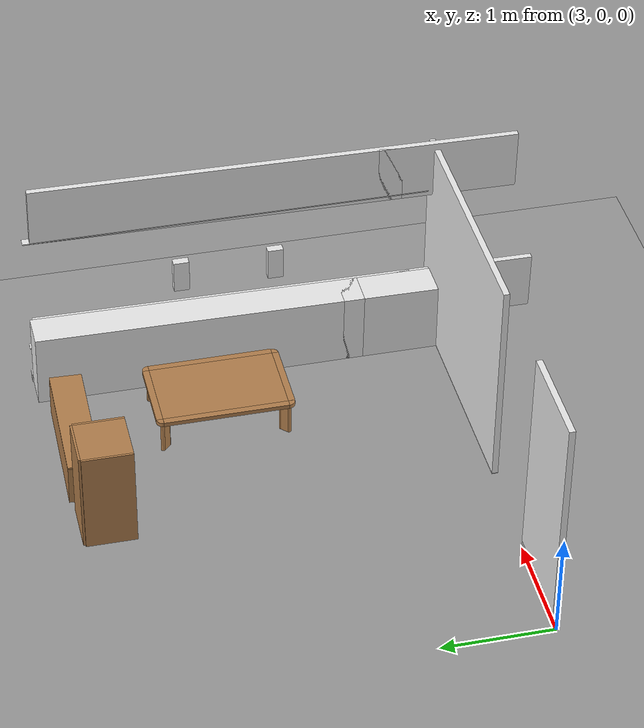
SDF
<sdf version="1.6">
 <world name="default">
  <model name="ground_plane">
   <static>1</static>
   <link name="link">
    <collision name="collision">
     <geometry><plane><normal>0 0 1</normal><size>100 100</size></plane></geometry>
     <surface><friction><ode><mu>100</mu><mu2>50</mu2></ode></friction></surface>
    </collision>
    <visual name="visual">
     <cast_shadows>0</cast_shadows>
     <geometry><plane><normal>0 0 1</normal><size>100 100</size></plane></geometry>
     <material>
      <script><uri>file://media/materials/scripts/gazebo.material</uri><name>Gazebo/Grey</name></script>
     </material>
    </visual>
   </link>
  </model>
  <model name="window">
   <link name="link">
    <pose>0 -1.45119 -0.459736 0 -0 0</pose>
    <inertial>
     <mass>74.704</mass>
     <inertia><ixx>0</ixx><ixy>0</ixy><ixz>0</ixz><iyy>0</iyy><iyz>0</iyz><izz>0</izz></inertia>
    </inertial>
    <velocity_decay><linear>0</linear><angular>0</angular></velocity_decay>
    <visual name="bottom_frame">
     <pose>0 0 0.05 0 -0 0</pose>
     <geometry><box><size>0.076062 3.6807 0.026221</size></box></geometry>
     <material>
      <script><uri>model://base_materials/color/scripts</uri><name>hsr_color/white</name></script>
      <ambient>1 1 1 1</ambient>
      <diffuse>0.5 0.5 0.5 1</diffuse>
      <specular>0 0 0 1</specular>
      <emissive>0 0 0 1</emissive>
     </material>
    </visual>
    <visual name="wall">
     <pose>0 0 0.4875 0 -0 0</pose>
     <geometry><box><size>0.076062 3.6807 0.209551</size></box></geometry>
     <material>
      <script>
       <uri>model://base_materials/wall/scripts</uri>
       <uri>model://base_materials/wall/textures</uri>
       <name>wall/white_noise</name>
      </script>
      <ambient>1 1 1 1</ambient>
      <diffuse>0.5 0.5 0.5 1</diffuse>
      <specular>0 0 0 1</specular>
      <emissive>0 0 0 1</emissive>
     </material>
    </visual>
    <visual name="right_frame">
     <pose>0 0.4325 1.48 0 -0 0</pose>
     <geometry><box><size>0.076062 0.143199 0.306613</size></box></geometry>
     <material>
      <script><uri>model://base_materials/color/scripts</uri><name>hsr_color/white</name></script>
      <ambient>1 1 1 1</ambient>
      <diffuse>0.5 0.5 0.5 1</diffuse>
      <specular>0 0 0 1</specular>
      <emissive>0 0 0 1</emissive>
     </material>
    </visual>
    <visual name="center_frame">
     <pose>0 0 0.8925 0 -0 0</pose>
     <geometry><box><size>0.076062 3.6807 0.006217</size></box></geometry>
     <material>
      <script><uri>model://base_materials/color/scripts</uri><name>hsr_color/white</name></script>
      <ambient>1 1 1 1</ambient>
      <diffuse>0.5 0.5 0.5 1</diffuse>
      <specular>0 0 0 1</specular>
      <emissive>0 0 0 1</emissive>
     </material>
    </visual>
    <visual name="left_frame">
     <pose>0 -0.4325 1.48 0 -0 0</pose>
     <geometry><box><size>0.076062 0.143199 0.306613</size></box></geometry>
     <material>
      <script><uri>model://base_materials/color/scripts</uri><name>hsr_color/white</name></script>
      <ambient>1 1 1 1</ambient>
      <diffuse>0.5 0.5 0.5 1</diffuse>
      <specular>0 0 0 1</specular>
      <emissive>0 0 0 1</emissive>
     </material>
    </visual>
    <visual name="top_frame">
     <pose>0 0 2.07 0 -0 0</pose>
     <geometry><box><size>0.076062 3.6807 0.008574</size></box></geometry>
     <material>
      <script><uri>model://base_materials/color/scripts</uri><name>hsr_color/white</name></script>
      <ambient>1 1 1 1</ambient>
      <diffuse>0.5 0.5 0.5 1</diffuse>
      <specular>0 0 0 1</specular>
      <emissive>0 0 0 1</emissive>
     </material>
    </visual>
    <collision name="collision_right_frame">
     <pose>0 0.4325 1.48 0 -0 0</pose>
     <geometry><box><size>0.076062 0.143199 0.306613</size></box></geometry>
     <surface>
      <friction>
       <ode><mu>1</mu><mu2>1</mu2><fdir1>0 0 0</fdir1><slip1>0</slip1><slip2>0</slip2></ode>
       <torsional>
        <coefficient>1</coefficient>
        <patch_radius>0</patch_radius>
        <surface_radius>0</surface_radius>
        <use_patch_radius>1</use_patch_radius>
        <ode><slip>0</slip></ode>
       </torsional>
      </friction>
      <bounce><restitution_coefficient>0</restitution_coefficient><threshold>1e+06</threshold></bounce>
      <contact>
       <collide_without_contact>0</collide_without_contact>
       <collide_without_contact_bitmask>1</collide_without_contact_bitmask>
       <collide_bitmask>1</collide_bitmask>
       <ode>
        <soft_cfm>0</soft_cfm>
        <soft_erp>0.2</soft_erp>
        <kp>1e+13</kp>
        <kd>1</kd>
        <max_vel>0.01</max_vel>
        <min_depth>0</min_depth>
       </ode>
       <bullet>
        <split_impulse>1</split_impulse>
        <split_impulse_penetration_threshold>-0.01</split_impulse_penetration_threshold>
        <soft_cfm>0</soft_cfm>
        <soft_erp>0.2</soft_erp>
        <kp>1e+13</kp>
        <kd>1</kd>
       </bullet>
      </contact>
     </surface>
    </collision>
    <collision name="collision_bottom_frame">
     <pose>0 0 0.05 0 -0 0</pose>
     <geometry><box><size>0.076062 3.6807 0.026221</size></box></geometry>
     <surface>
      <friction>
       <ode><mu>1</mu><mu2>1</mu2><fdir1>0 0 0</fdir1><slip1>0</slip1><slip2>0</slip2></ode>
       <torsional>
        <coefficient>1</coefficient>
        <patch_radius>0</patch_radius>
        <surface_radius>0</surface_radius>
        <use_patch_radius>1</use_patch_radius>
        <ode><slip>0</slip></ode>
       </torsional>
      </friction>
      <bounce><restitution_coefficient>0</restitution_coefficient><threshold>1e+06</threshold></bounce>
      <contact>
       <collide_without_contact>0</collide_without_contact>
       <collide_without_contact_bitmask>1</collide_without_contact_bitmask>
       <collide_bitmask>1</collide_bitmask>
       <ode>
        <soft_cfm>0</soft_cfm>
        <soft_erp>0.2</soft_erp>
        <kp>1e+13</kp>
        <kd>1</kd>
        <max_vel>0.01</max_vel>
        <min_depth>0</min_depth>
       </ode>
       <bullet>
        <split_impulse>1</split_impulse>
        <split_impulse_penetration_threshold>-0.01</split_impulse_penetration_threshold>
        <soft_cfm>0</soft_cfm>
        <soft_erp>0.2</soft_erp>
        <kp>1e+13</kp>
        <kd>1</kd>
       </bullet>
      </contact>
     </surface>
    </collision>
    <collision name="collision_wall">
     <pose>0 0 0.4875 0 -0 0</pose>
     <geometry><box><size>0.076062 3.6807 0.209551</size></box></geometry>
     <surface>
      <friction>
       <ode><mu>1</mu><mu2>1</mu2><fdir1>0 0 0</fdir1><slip1>0</slip1><slip2>0</slip2></ode>
       <torsional>
        <coefficient>1</coefficient>
        <patch_radius>0</patch_radius>
        <surface_radius>0</surface_radius>
        <use_patch_radius>1</use_patch_radius>
        <ode><slip>0</slip></ode>
       </torsional>
      </friction>
      <bounce><restitution_coefficient>0</restitution_coefficient><threshold>1e+06</threshold></bounce>
      <contact>
       <collide_without_contact>0</collide_without_contact>
       <collide_without_contact_bitmask>1</collide_without_contact_bitmask>
       <collide_bitmask>1</collide_bitmask>
       <ode>
        <soft_cfm>0</soft_cfm>
        <soft_erp>0.2</soft_erp>
        <kp>1e+13</kp>
        <kd>1</kd>
        <max_vel>0.01</max_vel>
        <min_depth>0</min_depth>
       </ode>
       <bullet>
        <split_impulse>1</split_impulse>
        <split_impulse_penetration_threshold>-0.01</split_impulse_penetration_threshold>
        <soft_cfm>0</soft_cfm>
        <soft_erp>0.2</soft_erp>
        <kp>1e+13</kp>
        <kd>1</kd>
       </bullet>
      </contact>
     </surface>
    </collision>
    <collision name="collision_center_frame">
     <pose>0 0 0.8925 0 -0 0</pose>
     <geometry><box><size>0.076062 3.6807 0.006217</size></box></geometry>
     <surface>
      <friction>
       <ode><mu>1</mu><mu2>1</mu2><fdir1>0 0 0</fdir1><slip1>0</slip1><slip2>0</slip2></ode>
       <torsional>
        <coefficient>1</coefficient>
        <patch_radius>0</patch_radius>
        <surface_radius>0</surface_radius>
        <use_patch_radius>1</use_patch_radius>
        <ode><slip>0</slip></ode>
       </torsional>
      </friction>
      <bounce><restitution_coefficient>0</restitution_coefficient><threshold>1e+06</threshold></bounce>
      <contact>
       <collide_without_contact>0</collide_without_contact>
       <collide_without_contact_bitmask>1</collide_without_contact_bitmask>
       <collide_bitmask>1</collide_bitmask>
       <ode>
        <soft_cfm>0</soft_cfm>
        <soft_erp>0.2</soft_erp>
        <kp>1e+13</kp>
        <kd>1</kd>
        <max_vel>0.01</max_vel>
        <min_depth>0</min_depth>
       </ode>
       <bullet>
        <split_impulse>1</split_impulse>
        <split_impulse_penetration_threshold>-0.01</split_impulse_penetration_threshold>
        <soft_cfm>0</soft_cfm>
        <soft_erp>0.2</soft_erp>
        <kp>1e+13</kp>
        <kd>1</kd>
       </bullet>
      </contact>
     </surface>
    </collision>
    <collision name="collision_left_frame">
     <pose>0 -0.4325 1.48 0 -0 0</pose>
     <geometry><box><size>0.076062 0.143199 0.306613</size></box></geometry>
     <surface>
      <friction>
       <ode><mu>1</mu><mu2>1</mu2><fdir1>0 0 0</fdir1><slip1>0</slip1><slip2>0</slip2></ode>
       <torsional>
        <coefficient>1</coefficient>
        <patch_radius>0</patch_radius>
        <surface_radius>0</surface_radius>
        <use_patch_radius>1</use_patch_radius>
        <ode><slip>0</slip></ode>
       </torsional>
      </friction>
      <bounce><restitution_coefficient>0</restitution_coefficient><threshold>1e+06</threshold></bounce>
      <contact>
       <collide_without_contact>0</collide_without_contact>
       <collide_without_contact_bitmask>1</collide_without_contact_bitmask>
       <collide_bitmask>1</collide_bitmask>
       <ode>
        <soft_cfm>0</soft_cfm>
        <soft_erp>0.2</soft_erp>
        <kp>1e+13</kp>
        <kd>1</kd>
        <max_vel>0.01</max_vel>
        <min_depth>0</min_depth>
       </ode>
       <bullet>
        <split_impulse>1</split_impulse>
        <split_impulse_penetration_threshold>-0.01</split_impulse_penetration_threshold>
        <soft_cfm>0</soft_cfm>
        <soft_erp>0.2</soft_erp>
        <kp>1e+13</kp>
        <kd>1</kd>
       </bullet>
      </contact>
     </surface>
    </collision>
    <collision name="collision_top_frame">
     <pose>0 0 2.07 0 -0 0</pose>
     <geometry><box><size>0.076062 3.6807 0.008574</size></box></geometry>
     <surface>
      <friction>
       <ode><mu>1</mu><mu2>1</mu2><fdir1>0 0 0</fdir1><slip1>0</slip1><slip2>0</slip2></ode>
       <torsional>
        <coefficient>1</coefficient>
        <patch_radius>0</patch_radius>
        <surface_radius>0</surface_radius>
        <use_patch_radius>1</use_patch_radius>
        <ode><slip>0</slip></ode>
       </torsional>
      </friction>
      <bounce><restitution_coefficient>0</restitution_coefficient><threshold>1e+06</threshold></bounce>
      <contact>
       <collide_without_contact>0</collide_without_contact>
       <collide_without_contact_bitmask>1</collide_without_contact_bitmask>
       <collide_bitmask>1</collide_bitmask>
       <ode>
        <soft_cfm>0</soft_cfm>
        <soft_erp>0.2</soft_erp>
        <kp>1e+13</kp>
        <kd>1</kd>
        <max_vel>0.01</max_vel>
        <min_depth>0</min_depth>
       </ode>
       <bullet>
        <split_impulse>1</split_impulse>
        <split_impulse_penetration_threshold>-0.01</split_impulse_penetration_threshold>
        <soft_cfm>0</soft_cfm>
        <soft_erp>0.2</soft_erp>
        <kp>1e+13</kp>
        <kd>1</kd>
       </bullet>
      </contact>
     </surface>
    </collision>
   </link>
   <static>1</static>
   <pose>7.07328 3.36168 0 0 -0 0</pose>
  </model>
  <model name="full_wall_55_900_2090_1_clone_0">
   <link name="link">
    <inertial>
     <mass>50</mass>
     <inertia><ixx>1</ixx><ixy>0</ixy><ixz>0</ixz><iyy>1</iyy><iyz>0</iyz><izz>1</izz></inertia>
    </inertial>
    <visual name="bottom_frame">
     <pose>0 0 0.05 0 -0 0</pose>
     <geometry><box><size>0.055 0.9 0.1</size></box></geometry>
     <material>
      <script><uri>model://base_materials/color/scripts</uri><name>hsr_color/white</name></script>
     </material>
    </visual>
    <collision name="collision_bottom_frame">
     <pose>0 0 0.05 0 -0 0</pose>
     <geometry><box><size>0.055 0.9 0.1</size></box></geometry>
    </collision>
    <visual name="wall">
     <pose>0 0 1.095 0 -0 0</pose>
     <geometry><box><size>0.055 0.9 1.99</size></box></geometry>
     <material>
      <script>
       <uri>model://base_materials/wall/scripts</uri>
       <uri>model://base_materials/wall/textures</uri>
       <name>wall/white_noise</name>
      </script>
     </material>
    </visual>
    <collision name="collision_wall">
     <pose>0 0 1.095 0 -0 0</pose>
     <geometry><box><size>0.055 0.9 1.99</size></box></geometry>
    </collision>
    <velocity_decay><linear>0</linear><angular>0</angular></velocity_decay>
   </link>
   <static>1</static>
   <pose>3.55507 -0.024236 -0.016667 0 -0 1.5708</pose>
  </model>
  <model name="full_wall_bedroom_dinning">
   <link name="link">
    <pose>-0 -0.606378 0 0 -0 0</pose>
    <inertial>
     <mass>128.04</mass>
     <inertia><ixx>0</ixx><ixy>0</ixy><ixz>0</ixz><iyy>0</iyy><iyz>0</iyz><izz>0</izz></inertia>
    </inertial>
    <velocity_decay><linear>0</linear><angular>0</angular></velocity_decay>
    <visual name="bottom_frame">
     <pose>0 0 0.05 0 -0 0</pose>
     <geometry><box><size>0.055 2.30472 0.1</size></box></geometry>
     <material>
      <script><uri>model://base_materials/color/scripts</uri><name>hsr_color/white</name></script>
      <ambient>1 1 1 1</ambient>
      <diffuse>0.5 0.5 0.5 1</diffuse>
      <specular>0 0 0 1</specular>
      <emissive>0 0 0 1</emissive>
     </material>
    </visual>
    <visual name="wall">
     <pose>0 0 1.095 0 -0 0</pose>
     <geometry><box><size>0.055 2.30472 1.99</size></box></geometry>
     <material>
      <script>
       <uri>model://base_materials/wall/scripts</uri>
       <uri>model://base_materials/wall/textures</uri>
       <name>wall/white_noise</name>
      </script>
      <ambient>1 1 1 1</ambient>
      <diffuse>0.5 0.5 0.5 1</diffuse>
      <specular>0 0 0 1</specular>
      <emissive>0 0 0 1</emissive>
     </material>
    </visual>
    <collision name="collision_bottom_frame">
     <pose>0 0 0.05 0 -0 0</pose>
     <geometry><box><size>0.055 2.30472 0.1</size></box></geometry>
     <surface>
      <friction>
       <ode><mu>1</mu><mu2>1</mu2><fdir1>0 0 0</fdir1><slip1>0</slip1><slip2>0</slip2></ode>
       <torsional>
        <coefficient>1</coefficient>
        <patch_radius>0</patch_radius>
        <surface_radius>0</surface_radius>
        <use_patch_radius>1</use_patch_radius>
        <ode><slip>0</slip></ode>
       </torsional>
      </friction>
      <bounce><restitution_coefficient>0</restitution_coefficient><threshold>1e+06</threshold></bounce>
      <contact>
       <collide_without_contact>0</collide_without_contact>
       <collide_without_contact_bitmask>1</collide_without_contact_bitmask>
       <collide_bitmask>1</collide_bitmask>
       <ode>
        <soft_cfm>0</soft_cfm>
        <soft_erp>0.2</soft_erp>
        <kp>1e+13</kp>
        <kd>1</kd>
        <max_vel>0.01</max_vel>
        <min_depth>0</min_depth>
       </ode>
       <bullet>
        <split_impulse>1</split_impulse>
        <split_impulse_penetration_threshold>-0.01</split_impulse_penetration_threshold>
        <soft_cfm>0</soft_cfm>
        <soft_erp>0.2</soft_erp>
        <kp>1e+13</kp>
        <kd>1</kd>
       </bullet>
      </contact>
     </surface>
    </collision>
    <collision name="collision_wall">
     <pose>0 0 1.095 0 -0 0</pose>
     <geometry><box><size>0.055 2.30472 1.99</size></box></geometry>
     <surface>
      <friction>
       <ode><mu>1</mu><mu2>1</mu2><fdir1>0 0 0</fdir1><slip1>0</slip1><slip2>0</slip2></ode>
       <torsional>
        <coefficient>1</coefficient>
        <patch_radius>0</patch_radius>
        <surface_radius>0</surface_radius>
        <use_patch_radius>1</use_patch_radius>
        <ode><slip>0</slip></ode>
       </torsional>
      </friction>
      <bounce><restitution_coefficient>0</restitution_coefficient><threshold>1e+06</threshold></bounce>
      <contact>
       <collide_without_contact>0</collide_without_contact>
       <collide_without_contact_bitmask>1</collide_without_contact_bitmask>
       <collide_bitmask>1</collide_bitmask>
       <ode>
        <soft_cfm>0</soft_cfm>
        <soft_erp>0.2</soft_erp>
        <kp>1e+13</kp>
        <kd>1</kd>
        <max_vel>0.01</max_vel>
        <min_depth>0</min_depth>
       </ode>
       <bullet>
        <split_impulse>1</split_impulse>
        <split_impulse_penetration_threshold>-0.01</split_impulse_penetration_threshold>
        <soft_cfm>0</soft_cfm>
        <soft_erp>0.2</soft_erp>
        <kp>1e+13</kp>
        <kd>1</kd>
       </bullet>
      </contact>
     </surface>
    </collision>
   </link>
   <static>1</static>
   <pose>5.45612 -0.013844 -0.043333 0 -0 1.58042</pose>
  </model>
  <model name="up_wall_0_clone_0">
   <link name="link">
    <pose>0 0.208482 0 0 -0 0</pose>
    <inertial>
     <mass>50</mass>
     <inertia><ixx>1</ixx><ixy>0</ixy><ixz>0</ixz><iyy>1</iyy><iyz>0</iyz><izz>1</izz></inertia>
    </inertial>
    <velocity_decay><linear>0</linear><angular>0</angular></velocity_decay>
    <visual name="bottom_frame">
     <pose>0 0 0.05 0 -0 0</pose>
     <geometry><box><size>0.055 0.551713 0.234857</size></box></geometry>
     <material>
      <script><uri>model://base_materials/color/scripts</uri><name>hsr_color/white</name></script>
      <ambient>1 1 1 1</ambient>
      <diffuse>0.5 0.5 0.5 1</diffuse>
      <specular>0 0 0 1</specular>
      <emissive>0 0 0 1</emissive>
     </material>
    </visual>
    <visual name="wall">
     <pose>0 0 1.095 0 -0 0</pose>
     <geometry><box><size>0.055 0.551713 4.66294</size></box></geometry>
     <material>
      <script>
       <uri>model://base_materials/wall/scripts</uri>
       <uri>model://base_materials/wall/textures</uri>
       <name>wall/white_noise</name>
      </script>
      <ambient>1 1 1 1</ambient>
      <diffuse>0.5 0.5 0.5 1</diffuse>
      <specular>0 0 0 1</specular>
      <emissive>0 0 0 1</emissive>
     </material>
    </visual>
   </link>
   <static>1</static>
   <pose>7.0679 0.282367 0.6367 -1.56017 0 0</pose>
  </model>
  <model name="tvboard">
   <link name="link">
    <inertial>
     <mass>50</mass>
     <inertia><ixx>1</ixx><ixy>0</ixy><ixz>0</ixz><iyy>1</iyy><iyz>0</iyz><izz>1</izz></inertia>
    </inertial>
    <visual name="left_board">
     <pose>-0.145 0.0085 -0.6175 0 -0 0</pose>
     <geometry><box><size>0.29 0.017 1.2315</size></box></geometry>
     <material>
      <script><uri>model://base_materials/wood/scripts/wood.material</uri><name>base_materials/wood</name></script>
     </material>
    </visual>
    <collision name="collision_left_board">
     <pose>-0.145 0.0085 -0.6175 0 -0 0</pose>
     <geometry><box><size>0.29 0.017 1.2315</size></box></geometry>
    </collision>
    <visual name="right_board">
     <pose>-0.145 0.4405 -0.61575 0 -0 0</pose>
     <geometry><box><size>0.29 0.017 1.2315</size></box></geometry>
     <material>
      <script><uri>model://base_materials/wood/scripts/wood.material</uri><name>base_materials/wood</name></script>
     </material>
    </visual>
    <collision name="collision_right_board">
     <pose>-0.145 0.4405 -0.61575 0 -0 0</pose>
     <geometry><box><size>0.29 0.017 1.2315</size></box></geometry>
    </collision>
    <visual name="top_board">
     <pose>-0.145 0.2245 -0.0085 0 -0 0</pose>
     <geometry><box><size>0.29 0.415 0.017</size></box></geometry>
     <material>
      <script><uri>model://base_materials/wood/scripts/wood.material</uri><name>base_materials/wood</name></script>
     </material>
    </visual>
    <collision name="collision_top_board">
     <pose>-0.145 0.2245 -0.0085 0 -0 0</pose>
     <geometry><box><size>0.29 0.415 0.017</size></box></geometry>
    </collision>
    <visual name="1st_shelf">
     <pose>-0.146 0.2245 -0.3035 0 -0 0</pose>
     <geometry><box><size>0.254 0.415 0.017</size></box></geometry>
     <material>
      <script><uri>model://base_materials/wood/scripts/wood.material</uri><name>base_materials/wood</name></script>
     </material>
    </visual>
    <collision name="collision_1st_shelf">
     <pose>-0.146 0.2245 -0.3035 0 -0 0</pose>
     <geometry><box><size>0.254 0.415 0.017</size></box></geometry>
    </collision>
    <visual name="2nd_shelf">
     <pose>-0.146 0.2245 -0.5845 0 -0 0</pose>
     <geometry><box><size>0.254 0.415 0.017</size></box></geometry>
     <material>
      <script><uri>model://base_materials/wood/scripts/wood.material</uri><name>base_materials/wood</name></script>
     </material>
    </visual>
    <collision name="collision_2nd_shelf">
     <pose>-0.146 0.2245 -0.5845 0 -0 0</pose>
     <geometry><box><size>0.254 0.415 0.017</size></box></geometry>
    </collision>
    <visual name="bottom_board">
     <pose>-0.148 0.2245 -1.04775 0 -0 0</pose>
     <geometry><box><size>0.254 0.415 0.3675</size></box></geometry>
     <material>
      <script><uri>model://base_materials/wood/scripts/wood.material</uri><name>base_materials/wood</name></script>
     </material>
    </visual>
    <collision name="collision_bottom_board">
     <pose>-0.148 0.2245 -1.04775 0 -0 0</pose>
     <geometry><box><size>0.254 0.415 0.3675</size></box></geometry>
    </collision>
    <visual name="back_board">
     <pose>-0.2815 0.2245 -0.61575 0 -0 0</pose>
     <geometry><box><size>0.017 0.415 1.2315</size></box></geometry>
     <material>
      <script><uri>model://base_materials/wood/scripts/wood.material</uri><name>base_materials/wood</name></script>
     </material>
    </visual>
    <collision name="collision_back_board">
     <pose>-0.2815 0.2245 -0.61575 0 -0 0</pose>
     <geometry><box><size>0.017 0.415 1.2315</size></box></geometry>
    </collision>
    <velocity_decay><linear>0</linear><angular>0</angular></velocity_decay>
   </link>
   <static>1</static>
   <pose>5.3468 3.39464 -0.006215 1.56872 0.012452 -1.5951</pose>
  </model>
  <model name="ground_plane_0">
   <static>1</static>
   <link name="link">
    <collision name="collision">
     <geometry><plane><normal>0 0 1</normal><size>100 100</size></plane></geometry>
     <surface><friction><ode><mu>100</mu><mu2>50</mu2></ode></friction></surface>
    </collision>
    <visual name="visual">
     <cast_shadows>0</cast_shadows>
     <geometry><plane><normal>0 0 1</normal><size>100 100</size></plane></geometry>
     <material>
      <script><uri>file://media/materials/scripts/gazebo.material</uri><name>Gazebo/Grey</name></script>
     </material>
    </visual>
   </link>
   <pose>4.49109 2.10937 0 0 -0 0</pose>
  </model>
  <model name="kitchen_lowtable">
   <link name="link">
    <inertial>
     <mass>10</mass>
     <inertia><ixx>1</ixx><ixy>0</ixy><ixz>0</ixz><iyy>1</iyy><iyz>0</iyz><izz>1</izz></inertia>
    </inertial>
    <visual name="center_board">
     <pose>0 0 0.38 0 -0 0</pose>
     <geometry><box><size>0.68 1.13 0.04</size></box></geometry>
     <material>
      <script><uri>model://base_materials/wood/scripts/wood.material</uri><name>base_materials/wood</name></script>
     </material>
    </visual>
    <collision name="collision_center_board">
     <pose>0 0 0.38 0 -0 0</pose>
     <geometry><box><size>0.68 1.13 0.04</size></box></geometry>
    </collision>
    <visual name="front_board">
     <pose>0.37 0 0.38 0 -0 0</pose>
     <geometry><box><size>0.06 1.13 0.04</size></box></geometry>
     <material>
      <script><uri>model://base_materials/wood/scripts/wood.material</uri><name>base_materials/wood</name></script>
     </material>
    </visual>
    <collision name="collision_front_board">
     <pose>0.37 0 0.38 0 -0 0</pose>
     <geometry><box><size>0.06 1.13 0.04</size></box></geometry>
    </collision>
    <visual name="back_board">
     <pose>-0.37 0 0.38 0 -0 0</pose>
     <geometry><box><size>0.06 1.13 0.04</size></box></geometry>
     <material>
      <script><uri>model://base_materials/wood/scripts/wood.material</uri><name>base_materials/wood</name></script>
     </material>
    </visual>
    <collision name="collision_back_board">
     <pose>-0.37 0 0.38 0 -0 0</pose>
     <geometry><box><size>0.06 1.13 0.04</size></box></geometry>
    </collision>
    <visual name="right_board">
     <pose>0 0.595 0.38 0 -0 0</pose>
     <geometry><box><size>0.68 0.06 0.04</size></box></geometry>
     <material>
      <script><uri>model://base_materials/wood/scripts/wood.material</uri><name>base_materials/wood</name></script>
     </material>
    </visual>
    <collision name="collision_right_board">
     <pose>0 0.595 0.38 0 -0 0</pose>
     <geometry><box><size>0.68 0.06 0.04</size></box></geometry>
    </collision>
    <visual name="left_board">
     <pose>0 -0.595 0.38 0 -0 0</pose>
     <geometry><box><size>0.68 0.06 0.04</size></box></geometry>
     <material>
      <script><uri>model://base_materials/wood/scripts/wood.material</uri><name>base_materials/wood</name></script>
     </material>
    </visual>
    <collision name="collision_left_board">
     <pose>0 -0.595 0.38 0 -0 0</pose>
     <geometry><box><size>0.68 0.06 0.04</size></box></geometry>
    </collision>
    <visual name="front_right_corner_board">
     <pose>0.34 0.565 0.38 0 -0 0</pose>
     <geometry><cylinder><radius>0.06</radius><length>0.039</length></cylinder></geometry>
     <material>
      <script><uri>model://base_materials/wood/scripts/wood.material</uri><name>base_materials/wood</name></script>
     </material>
    </visual>
    <collision name="collision_front_right_corner_board">
     <pose>0.34 0.565 0.38 0 -0 0</pose>
     <geometry><cylinder><radius>0.06</radius><length>0.039</length></cylinder></geometry>
    </collision>
    <visual name="front_left_corner_board">
     <pose>0.34 -0.565 0.38 0 -0 0</pose>
     <geometry><cylinder><radius>0.06</radius><length>0.039</length></cylinder></geometry>
     <material>
      <script><uri>model://base_materials/wood/scripts/wood.material</uri><name>base_materials/wood</name></script>
     </material>
    </visual>
    <collision name="collision_front_left_corner_board">
     <pose>0.34 -0.565 0.38 0 -0 0</pose>
     <geometry><cylinder><radius>0.06</radius><length>0.039</length></cylinder></geometry>
    </collision>
    <visual name="front_back_right_corner_board">
     <pose>-0.34 0.565 0.38 0 -0 0</pose>
     <geometry><cylinder><radius>0.06</radius><length>0.039</length></cylinder></geometry>
     <material>
      <script><uri>model://base_materials/wood/scripts/wood.material</uri><name>base_materials/wood</name></script>
     </material>
    </visual>
    <collision name="collision_back_right_corner_board">
     <pose>-0.34 0.565 0.38 0 -0 0</pose>
     <geometry><cylinder><radius>0.06</radius><length>0.039</length></cylinder></geometry>
    </collision>
    <visual name="front_back_left_corner_board">
     <pose>-0.34 -0.565 0.38 0 -0 0</pose>
     <geometry><cylinder><radius>0.06</radius><length>0.039</length></cylinder></geometry>
     <material>
      <script><uri>model://base_materials/wood/scripts/wood.material</uri><name>base_materials/wood</name></script>
     </material>
    </visual>
    <collision name="collision_back_left_corner_board">
     <pose>-0.34 -0.565 0.38 0 -0 0</pose>
     <geometry><cylinder><radius>0.06</radius><length>0.039</length></cylinder></geometry>
    </collision>
    <visual name="front_left_corner_frame1">
     <pose>0.345858 -0.57086 0.18 0 -0 0</pose>
     <geometry><cylinder><radius>0.02</radius><length>0.36</length></cylinder></geometry>
     <material>
      <script><uri>model://base_materials/wood/scripts/wood.material</uri><name>base_materials/wood</name></script>
     </material>
    </visual>
    <collision name="collision_front_left_corner_frame1">
     <pose>0.345858 -0.57086 0.18 0 -0 0</pose>
     <geometry><cylinder><radius>0.02</radius><length>0.36</length></cylinder></geometry>
    </collision>
    <visual name="front_left_corner_frame2">
     <pose>0.317574 -0.54257 0.18 0 -0 0.7854</pose>
     <geometry><box><size>0.04 0.08 0.36</size></box></geometry>
     <material>
      <script><uri>model://base_materials/wood/scripts/wood.material</uri><name>base_materials/wood</name></script>
     </material>
    </visual>
    <collision name="collision_front_left_corner_frame2">
     <pose>0.317574 -0.54257 0.18 0 -0 0.7854</pose>
     <geometry><box><size>0.04 0.08 0.36</size></box></geometry>
    </collision>
    <visual name="front_left_corner_frame3">
     <pose>0.289289 -0.51429 0.18 0 -0 0</pose>
     <geometry><cylinder><radius>0.02</radius><length>0.36</length></cylinder></geometry>
     <material>
      <script><uri>model://base_materials/wood/scripts/wood.material</uri><name>base_materials/wood</name></script>
     </material>
    </visual>
    <collision name="collision_front_left_corner_frame3">
     <pose>0.289289 -0.51429 0.18 0 -0 0</pose>
     <geometry><cylinder><radius>0.02</radius><length>0.36</length></cylinder></geometry>
    </collision>
    <visual name="front_right_corner_frame1">
     <pose>0.345858 0.57086 0.18 0 -0 0</pose>
     <geometry><cylinder><radius>0.02</radius><length>0.36</length></cylinder></geometry>
     <material>
      <script><uri>model://base_materials/wood/scripts/wood.material</uri><name>base_materials/wood</name></script>
     </material>
    </visual>
    <collision name="collision_front_right_corner_frame1">
     <pose>0.345858 0.57086 0.18 0 -0 0</pose>
     <geometry><cylinder><radius>0.02</radius><length>0.36</length></cylinder></geometry>
    </collision>
    <visual name="front_right_corner_frame2">
     <pose>0.317574 0.54257 0.18 0 0 -0.7854</pose>
     <geometry><box><size>0.04 0.08 0.36</size></box></geometry>
     <material>
      <script><uri>model://base_materials/wood/scripts/wood.material</uri><name>base_materials/wood</name></script>
     </material>
    </visual>
    <collision name="collision_front_right_corner_frame2">
     <pose>0.317574 0.54257 0.18 0 0 -0.7854</pose>
     <geometry><box><size>0.04 0.08 0.36</size></box></geometry>
    </collision>
    <visual name="front_right_corner_frame3">
     <pose>0.289289 0.51429 0.18 0 -0 0</pose>
     <geometry><cylinder><radius>0.02</radius><length>0.36</length></cylinder></geometry>
     <material>
      <script><uri>model://base_materials/wood/scripts/wood.material</uri><name>base_materials/wood</name></script>
     </material>
    </visual>
    <collision name="collision_front_right_corner_frame3">
     <pose>0.289289 0.51429 0.18 0 -0 0</pose>
     <geometry><cylinder><radius>0.02</radius><length>0.36</length></cylinder></geometry>
    </collision>
    <visual name="back_left_corner_frame1">
     <pose>-0.345858 -0.57086 0.18 0 -0 0</pose>
     <geometry><cylinder><radius>0.02</radius><length>0.36</length></cylinder></geometry>
     <material>
      <script><uri>model://base_materials/wood/scripts/wood.material</uri><name>base_materials/wood</name></script>
     </material>
    </visual>
    <collision name="collision_back_left_corner_frame1">
     <pose>-0.345858 -0.57086 0.18 0 -0 0</pose>
     <geometry><cylinder><radius>0.02</radius><length>0.36</length></cylinder></geometry>
    </collision>
    <visual name="back_left_corner_frame2">
     <pose>-0.317574 -0.54257 0.18 0 0 -0.7854</pose>
     <geometry><box><size>0.04 0.08 0.36</size></box></geometry>
     <material>
      <script><uri>model://base_materials/wood/scripts/wood.material</uri><name>base_materials/wood</name></script>
     </material>
    </visual>
    <collision name="collision_back_left_corner_frame2">
     <pose>-0.317574 -0.54257 0.18 0 0 -0.7854</pose>
     <geometry><box><size>0.04 0.08 0.36</size></box></geometry>
    </collision>
    <visual name="back_left_corner_frame3">
     <pose>-0.289289 -0.51429 0.18 0 -0 0</pose>
     <geometry><cylinder><radius>0.02</radius><length>0.36</length></cylinder></geometry>
     <material>
      <script><uri>model://base_materials/wood/scripts/wood.material</uri><name>base_materials/wood</name></script>
     </material>
    </visual>
    <collision name="collision_back_left_corner_frame3">
     <pose>-0.289289 -0.51429 0.18 0 -0 0</pose>
     <geometry><cylinder><radius>0.02</radius><length>0.36</length></cylinder></geometry>
    </collision>
    <visual name="back_right_corner_frame1">
     <pose>-0.345858 0.57086 0.18 0 -0 0</pose>
     <geometry><cylinder><radius>0.02</radius><length>0.36</length></cylinder></geometry>
     <material>
      <script><uri>model://base_materials/wood/scripts/wood.material</uri><name>base_materials/wood</name></script>
     </material>
    </visual>
    <collision name="collision_back_right_corner_frame1">
     <pose>-0.345858 0.57086 0.18 0 -0 0</pose>
     <geometry><cylinder><radius>0.02</radius><length>0.36</length></cylinder></geometry>
    </collision>
    <visual name="back_right_corner_frame2">
     <pose>-0.317574 0.54257 0.18 0 -0 0.7854</pose>
     <geometry><box><size>0.04 0.08 0.36</size></box></geometry>
     <material>
      <script><uri>model://base_materials/wood/scripts/wood.material</uri><name>base_materials/wood</name></script>
     </material>
    </visual>
    <collision name="collision_back_right_corner_frame2">
     <pose>-0.317574 0.54257 0.18 0 -0 0.7854</pose>
     <geometry><box><size>0.04 0.08 0.36</size></box></geometry>
    </collision>
    <visual name="back_right_corner_frame3">
     <pose>-0.289289 0.51429 0.18 0 -0 0</pose>
     <geometry><cylinder><radius>0.02</radius><length>0.36</length></cylinder></geometry>
     <material>
      <script><uri>model://base_materials/wood/scripts/wood.material</uri><name>base_materials/wood</name></script>
     </material>
    </visual>
    <collision name="collision_back_right_corner_frame3">
     <pose>-0.289289 0.51429 0.18 0 -0 0</pose>
     <geometry><cylinder><radius>0.02</radius><length>0.36</length></cylinder></geometry>
    </collision>
    <velocity_decay><linear>0</linear><angular>0</angular></velocity_decay>
   </link>
   <static>1</static>
   <pose>6.20424 2.18833 0 0 -0 0</pose>
  </model>
  <model name="cabinet">
   <static>1</static>
   <link name="cabinet_bottom_plate">
    <inertial>
     <pose>0 0 -1 0 -0 0</pose>
     <inertia><ixx>2.05</ixx><ixy>0</ixy><ixz>0</ixz><iyy>2.05</iyy><iyz>0</iyz><izz>2.05</izz></inertia>
     <mass>25</mass>
    </inertial>
    <collision name="cabinet_bottom_plate_geom">
     <pose>0 0 0.01 0 -0 0</pose>
     <geometry><box><size>0.45 0.45 0.02</size></box></geometry>
    </collision>
    <visual name="cabinet_bottom_plate_geom_visual">
     <pose>0 0 0.01 0 -0 0</pose>
     <geometry><box><size>0.45 0.45 0.02</size></box></geometry>
     <material>
      <script><uri>file://media/materials/scripts/gazebo.material</uri><name>Gazebo/Wood</name></script>
     </material>
    </visual>
    <collision name="cabinet_bottom_plate_geom_cabinet_back_plate">
     <pose>0.235 0 0.51 0 -0 0</pose>
     <geometry><box><size>0.02 0.45 1.02</size></box></geometry>
    </collision>
    <visual name="cabinet_bottom_plate_geom_cabinet_back_plate_visual">
     <pose>0.235 0 0.51 0 -0 0</pose>
     <geometry><box><size>0.02 0.45 1.02</size></box></geometry>
     <material>
      <script><uri>file://media/materials/scripts/gazebo.material</uri><name>Gazebo/Wood</name></script>
     </material>
    </visual>
    <collision name="cabinet_bottom_plate_geom_cabinet_left_plate">
     <pose>0 0.235 0.51 0 -0 0</pose>
     <geometry><box><size>0.45 0.02 1.02</size></box></geometry>
    </collision>
    <visual name="cabinet_bottom_plate_geom_cabinet_left_plate_visual">
     <pose>0 0.235 0.51 0 -0 0</pose>
     <geometry><box><size>0.45 0.02 1.02</size></box></geometry>
     <material>
      <script><uri>file://media/materials/scripts/gazebo.material</uri><name>Gazebo/Wood</name></script>
     </material>
    </visual>
    <collision name="cabinet_bottom_plate_geom_cabinet_middle_plate">
     <pose>0 0 0.51 0 -0 0</pose>
     <geometry><box><size>0.45 0.45 0.02</size></box></geometry>
    </collision>
    <visual name="cabinet_bottom_plate_geom_cabinet_middle_plate_visual">
     <pose>0 0 0.51 0 -0 0</pose>
     <geometry><box><size>0.45 0.45 0.02</size></box></geometry>
     <material>
      <script><uri>file://media/materials/scripts/gazebo.material</uri><name>Gazebo/Wood</name></script>
     </material>
    </visual>
    <collision name="cabinet_bottom_plate_geom_cabinet_right_plate">
     <pose>0 -0.235 0.51 0 -0 0</pose>
     <geometry><box><size>0.45 0.02 1.02</size></box></geometry>
    </collision>
    <visual name="cabinet_bottom_plate_geom_cabinet_right_plate_visual">
     <pose>0 -0.235 0.51 0 -0 0</pose>
     <geometry><box><size>0.45 0.02 1.02</size></box></geometry>
     <material>
      <script><uri>file://media/materials/scripts/gazebo.material</uri><name>Gazebo/Wood</name></script>
     </material>
    </visual>
    <collision name="cabinet_bottom_plate_geom_cabinet_top_plate">
     <pose>0 0 1.01 0 -0 0</pose>
     <geometry><box><size>0.45 0.45 0.02</size></box></geometry>
    </collision>
    <visual name="cabinet_bottom_plate_geom_cabinet_top_plate_visual">
     <pose>0 0 1.01 0 -0 0</pose>
     <geometry><box><size>0.45 0.45 0.02</size></box></geometry>
     <material>
      <script><uri>file://media/materials/scripts/gazebo.material</uri><name>Gazebo/Wood</name></script>
     </material>
    </visual>
   </link>
   <pose>5.01635 3.40715 0 0 -0 1.56673</pose>
  </model>
  <model name="wall_under_window">
   <link name="link">
    <pose>-1.16136 0.310894 0.451619 0 -0 0</pose>
    <inertial>
     <mass>50</mass>
     <inertia><ixx>1</ixx><ixy>0</ixy><ixz>0</ixz><iyy>1</iyy><iyz>0</iyz><izz>1</izz></inertia>
    </inertial>
    <velocity_decay><linear>0</linear><angular>0</angular></velocity_decay>
    <visual name="bottom_frame">
     <pose>0 0 0.05 0 -0 0</pose>
     <geometry><box><size>0.319933 0.784691 0.18978</size></box></geometry>
     <material>
      <script><uri>model://base_materials/color/scripts</uri><name>hsr_color/white</name></script>
      <ambient>1 1 1 1</ambient>
      <diffuse>0.5 0.5 0.5 1</diffuse>
      <specular>0 0 0 1</specular>
      <emissive>0 0 0 1</emissive>
     </material>
    </visual>
    <visual name="wall">
     <pose>0 0 1.095 0 -0 0</pose>
     <geometry><box><size>0.319933 0.784691 3.75641</size></box></geometry>
     <material>
      <script>
       <uri>model://base_materials/wall/scripts</uri>
       <uri>model://base_materials/wall/textures</uri>
       <name>wall/white_noise</name>
      </script>
      <ambient>1 1 1 1</ambient>
      <diffuse>0.5 0.5 0.5 1</diffuse>
      <specular>0 0 0 1</specular>
      <emissive>0 0 0 1</emissive>
     </material>
    </visual>
   </link>
   <static>1</static>
   <pose>8.05293 0.310881 0.636701 -1.56017 0 0</pose>
  </model>
  <model name="up_wall_0">
   <link name="link">
    <pose>0 0.208482 0.104132 0 -0 0</pose>
    <inertial>
     <mass>50</mass>
     <inertia><ixx>1</ixx><ixy>0</ixy><ixz>0</ixz><iyy>1</iyy><iyz>0</iyz><izz>1</izz></inertia>
    </inertial>
    <velocity_decay><linear>0</linear><angular>0</angular></velocity_decay>
    <visual name="wall">
     <pose>0 0 1.095 0 -0 0</pose>
     <geometry><box><size>0.055 0.551713 4.42823</size></box></geometry>
     <material>
      <script>
       <uri>model://base_materials/wall/scripts</uri>
       <uri>model://base_materials/wall/textures</uri>
       <name>wall/white_noise</name>
      </script>
      <ambient>1 1 1 1</ambient>
      <diffuse>0.5 0.5 0.5 1</diffuse>
      <specular>0 0 0 1</specular>
      <emissive>0 0 0 1</emissive>
     </material>
    </visual>
    <visual name="bottom_frame">
     <pose>0 0 0.05 0 -0 0</pose>
     <geometry><box><size>0.055 0.551713 0.223397</size></box></geometry>
     <material>
      <script><uri>model://base_materials/color/scripts</uri><name>hsr_color/white</name></script>
      <ambient>1 1 1 1</ambient>
      <diffuse>0.5 0.5 0.5 1</diffuse>
      <specular>0 0 0 1</specular>
      <emissive>0 0 0 1</emissive>
     </material>
    </visual>
   </link>
   <static>1</static>
   <pose>7.06926 0.268949 2.04807 -1.56017 0 0</pose>
  </model>
 </world>
</sdf>
